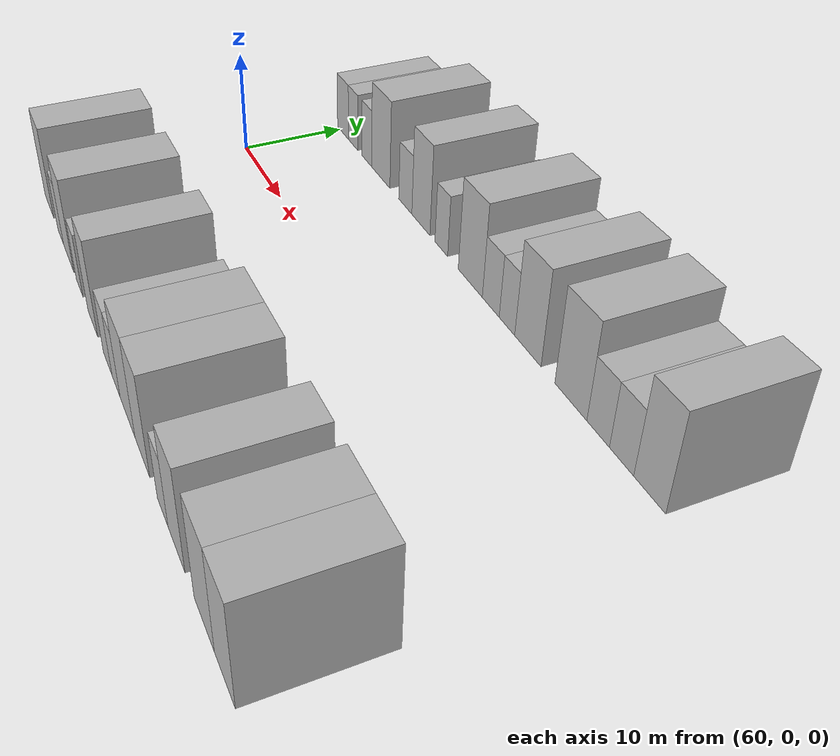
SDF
<sdf version="1.6">
 <world name="default">
  <model name="building_13">
   <static>1</static>
   <pose>60.8177 15.0000 0 0.000000 0.000000 1.570796</pose>
   <link name="link">
    <pose>0 0 3.00 0 0 0</pose>
    <collision name="collision"><geometry><box><size>10.0000 2.9090 6.0000</size></box></geometry></collision>
    <visual name="visual">
     <cast_shadows>0</cast_shadows>
     <geometry><box><size>10.0000 2.9090 6.0000</size></box></geometry>
     <material>
      <script>
       <uri>model://HANNAS_wall/materials/scripts</uri>
       <uri>model://HANNAS_wall/materials/textures</uri>
       <name>vrc/HANNAS_wall</name>
      </script>
     </material>
    </visual>
   </link>
  </model>
  <model name="building_14">
   <static>1</static>
   <pose>63.4770 15.0000 0 0.000000 0.000000 1.570796</pose>
   <link name="link">
    <pose>0 0 3.00 0 0 0</pose>
    <collision name="collision"><geometry><box><size>10.0000 2.4096 6.0000</size></box></geometry></collision>
    <visual name="visual">
     <cast_shadows>0</cast_shadows>
     <geometry><box><size>10.0000 2.4096 6.0000</size></box></geometry>
     <material>
      <script>
       <uri>model://HANNAS_wall/materials/scripts</uri>
       <uri>model://HANNAS_wall/materials/textures</uri>
       <name>vrc/HANNAS_wall</name>
      </script>
     </material>
    </visual>
   </link>
  </model>
  <model name="building_15">
   <static>1</static>
   <pose>66.9053 15.0000 0 0.000000 0.000000 1.570796</pose>
   <link name="link">
    <pose>0 0 3.00 0 0 0</pose>
    <collision name="collision"><geometry><box><size>10.0000 2.4470 6.0000</size></box></geometry></collision>
    <visual name="visual">
     <cast_shadows>0</cast_shadows>
     <geometry><box><size>10.0000 2.4470 6.0000</size></box></geometry>
     <material>
      <script>
       <uri>model://HANNAS_wall/materials/scripts</uri>
       <uri>model://HANNAS_wall/materials/textures</uri>
       <name>vrc/HANNAS_wall</name>
      </script>
     </material>
    </visual>
   </link>
  </model>
  <model name="building_16">
   <static>1</static>
   <pose>70.2902 15.0000 0 0.000000 0.000000 1.570796</pose>
   <link name="link">
    <pose>0 0 4.50 0 0 0</pose>
    <collision name="collision"><geometry><box><size>10.0000 4.3228 9.0000</size></box></geometry></collision>
    <visual name="visual">
     <cast_shadows>0</cast_shadows>
     <geometry><box><size>10.0000 4.3228 9.0000</size></box></geometry>
     <material>
      <script>
       <uri>model://HANNAS_wall/materials/scripts</uri>
       <uri>model://HANNAS_wall/materials/textures</uri>
       <name>vrc/HANNAS_wall</name>
      </script>
     </material>
    </visual>
   </link>
  </model>
  <model name="building_17">
   <static>1</static>
   <pose>75.8866 15.0000 0 0.000000 0.000000 1.570796</pose>
   <link name="link">
    <pose>0 0 3.00 0 0 0</pose>
    <collision name="collision"><geometry><box><size>10.0000 2.8701 6.0000</size></box></geometry></collision>
    <visual name="visual">
     <cast_shadows>0</cast_shadows>
     <geometry><box><size>10.0000 2.8701 6.0000</size></box></geometry>
     <material>
      <script>
       <uri>model://HANNAS_wall/materials/scripts</uri>
       <uri>model://HANNAS_wall/materials/textures</uri>
       <name>vrc/HANNAS_wall</name>
      </script>
     </material>
    </visual>
   </link>
  </model>
  <model name="building_18">
   <static>1</static>
   <pose>79.2001 15.0000 0 0.000000 0.000000 1.570796</pose>
   <link name="link">
    <pose>0 0 4.50 0 0 0</pose>
    <collision name="collision"><geometry><box><size>10.0000 3.7569 9.0000</size></box></geometry></collision>
    <visual name="visual">
     <cast_shadows>0</cast_shadows>
     <geometry><box><size>10.0000 3.7569 9.0000</size></box></geometry>
     <material>
      <script>
       <uri>model://HANNAS_wall/materials/scripts</uri>
       <uri>model://HANNAS_wall/materials/textures</uri>
       <name>vrc/HANNAS_wall</name>
      </script>
     </material>
    </visual>
   </link>
  </model>
  <model name="building_19">
   <static>1</static>
   <pose>83.3253 15.0000 0 0.000000 0.000000 1.570796</pose>
   <link name="link">
    <pose>0 0 3.00 0 0 0</pose>
    <collision name="collision"><geometry><box><size>10.0000 2.4935 6.0000</size></box></geometry></collision>
    <visual name="visual">
     <cast_shadows>0</cast_shadows>
     <geometry><box><size>10.0000 2.4935 6.0000</size></box></geometry>
     <material>
      <script>
       <uri>model://HANNAS_wall/materials/scripts</uri>
       <uri>model://HANNAS_wall/materials/textures</uri>
       <name>vrc/HANNAS_wall</name>
      </script>
     </material>
    </visual>
   </link>
  </model>
  <model name="building_20">
   <static>1</static>
   <pose>88.7367 15.0000 0 0.000000 0.000000 1.570796</pose>
   <link name="link">
    <pose>0 0 4.50 0 0 0</pose>
    <collision name="collision"><geometry><box><size>10.0000 4.3294 9.0000</size></box></geometry></collision>
    <visual name="visual">
     <cast_shadows>0</cast_shadows>
     <geometry><box><size>10.0000 4.3294 9.0000</size></box></geometry>
     <material>
      <script>
       <uri>model://HANNAS_wall/materials/scripts</uri>
       <uri>model://HANNAS_wall/materials/textures</uri>
       <name>vrc/HANNAS_wall</name>
      </script>
     </material>
    </visual>
   </link>
  </model>
  <model name="building_21">
   <static>1</static>
   <pose>92.3291 15.0000 0 0.000000 0.000000 1.570796</pose>
   <link name="link">
    <pose>0 0 3.00 0 0 0</pose>
    <collision name="collision"><geometry><box><size>10.0000 2.8554 6.0000</size></box></geometry></collision>
    <visual name="visual">
     <cast_shadows>0</cast_shadows>
     <geometry><box><size>10.0000 2.8554 6.0000</size></box></geometry>
     <material>
      <script>
       <uri>model://HANNAS_wall/materials/scripts</uri>
       <uri>model://HANNAS_wall/materials/textures</uri>
       <name>vrc/HANNAS_wall</name>
      </script>
     </material>
    </visual>
   </link>
  </model>
  <model name="building_22">
   <static>1</static>
   <pose>95.0133 15.0000 0 0.000000 0.000000 1.570796</pose>
   <link name="link">
    <pose>0 0 3.00 0 0 0</pose>
    <collision name="collision"><geometry><box><size>10.0000 2.5129 6.0000</size></box></geometry></collision>
    <visual name="visual">
     <cast_shadows>0</cast_shadows>
     <geometry><box><size>10.0000 2.5129 6.0000</size></box></geometry>
     <material>
      <script>
       <uri>model://HANNAS_wall/materials/scripts</uri>
       <uri>model://HANNAS_wall/materials/textures</uri>
       <name>vrc/HANNAS_wall</name>
      </script>
     </material>
    </visual>
   </link>
  </model>
  <model name="building_23">
   <static>1</static>
   <pose>98.2925 15.0000 0 0.000000 0.000000 1.570796</pose>
   <link name="link">
    <pose>0 0 4.50 0 0 0</pose>
    <collision name="collision"><geometry><box><size>10.0000 4.0456 9.0000</size></box></geometry></collision>
    <visual name="visual">
     <cast_shadows>0</cast_shadows>
     <geometry><box><size>10.0000 4.0456 9.0000</size></box></geometry>
     <material>
      <script>
       <uri>model://HANNAS_wall/materials/scripts</uri>
       <uri>model://HANNAS_wall/materials/textures</uri>
       <name>vrc/HANNAS_wall</name>
      </script>
     </material>
    </visual>
   </link>
  </model>
  <model name="building_24">
   <static>1</static>
   <pose>104.5154 15.0000 0 0.000000 0.000000 1.570796</pose>
   <link name="link">
    <pose>0 0 4.50 0 0 0</pose>
    <collision name="collision"><geometry><box><size>10.0000 4.4003 9.0000</size></box></geometry></collision>
    <visual name="visual">
     <cast_shadows>0</cast_shadows>
     <geometry><box><size>10.0000 4.4003 9.0000</size></box></geometry>
     <material>
      <script>
       <uri>model://HANNAS_wall/materials/scripts</uri>
       <uri>model://HANNAS_wall/materials/textures</uri>
       <name>vrc/HANNAS_wall</name>
      </script>
     </material>
    </visual>
   </link>
  </model>
  <model name="building_25">
   <static>1</static>
   <pose>108.1630 15.0000 0 0.000000 0.000000 1.570796</pose>
   <link name="link">
    <pose>0 0 3.00 0 0 0</pose>
    <collision name="collision"><geometry><box><size>10.0000 2.8949 6.0000</size></box></geometry></collision>
    <visual name="visual">
     <cast_shadows>0</cast_shadows>
     <geometry><box><size>10.0000 2.8949 6.0000</size></box></geometry>
     <material>
      <script>
       <uri>model://HANNAS_wall/materials/scripts</uri>
       <uri>model://HANNAS_wall/materials/textures</uri>
       <name>vrc/HANNAS_wall</name>
      </script>
     </material>
    </visual>
   </link>
  </model>
  <model name="building_26">
   <static>1</static>
   <pose>111.0786 15.0000 0 0.000000 0.000000 1.570796</pose>
   <link name="link">
    <pose>0 0 3.00 0 0 0</pose>
    <collision name="collision"><geometry><box><size>10.0000 2.9363 6.0000</size></box></geometry></collision>
    <visual name="visual">
     <cast_shadows>0</cast_shadows>
     <geometry><box><size>10.0000 2.9363 6.0000</size></box></geometry>
     <material>
      <script>
       <uri>model://HANNAS_wall/materials/scripts</uri>
       <uri>model://HANNAS_wall/materials/textures</uri>
       <name>vrc/HANNAS_wall</name>
      </script>
     </material>
    </visual>
   </link>
  </model>
  <model name="building_27">
   <static>1</static>
   <pose>114.3755 15.0000 0 0.000000 0.000000 1.570796</pose>
   <link name="link">
    <pose>0 0 4.50 0 0 0</pose>
    <collision name="collision"><geometry><box><size>10.0000 3.6575 9.0000</size></box></geometry></collision>
    <visual name="visual">
     <cast_shadows>0</cast_shadows>
     <geometry><box><size>10.0000 3.6575 9.0000</size></box></geometry>
     <material>
      <script>
       <uri>model://HANNAS_wall/materials/scripts</uri>
       <uri>model://HANNAS_wall/materials/textures</uri>
       <name>vrc/HANNAS_wall</name>
      </script>
     </material>
    </visual>
   </link>
  </model>
  <model name="building_69">
   <static>1</static>
   <pose>63.2808 -15.0000 0 0.000000 0.000000 1.570796</pose>
   <link name="link">
    <pose>0 0 4.50 0 0 0</pose>
    <collision name="collision"><geometry><box><size>10.0000 4.2075 9.0000</size></box></geometry></collision>
    <visual name="visual">
     <cast_shadows>0</cast_shadows>
     <geometry><box><size>10.0000 4.2075 9.0000</size></box></geometry>
     <material>
      <script>
       <uri>model://HANNAS_wall/materials/scripts</uri>
       <uri>model://HANNAS_wall/materials/textures</uri>
       <name>vrc/HANNAS_wall</name>
      </script>
     </material>
    </visual>
   </link>
  </model>
  <model name="building_70">
   <static>1</static>
   <pose>68.7220 -15.0000 0 0.000000 0.000000 1.570796</pose>
   <link name="link">
    <pose>0 0 3.00 0 0 0</pose>
    <collision name="collision"><geometry><box><size>10.0000 2.6748 6.0000</size></box></geometry></collision>
    <visual name="visual">
     <cast_shadows>0</cast_shadows>
     <geometry><box><size>10.0000 2.6748 6.0000</size></box></geometry>
     <material>
      <script>
       <uri>model://HANNAS_wall/materials/scripts</uri>
       <uri>model://HANNAS_wall/materials/textures</uri>
       <name>vrc/HANNAS_wall</name>
      </script>
     </material>
    </visual>
   </link>
  </model>
  <model name="building_71">
   <static>1</static>
   <pose>72.3018 -15.0000 0 0.000000 0.000000 1.570796</pose>
   <link name="link">
    <pose>0 0 4.50 0 0 0</pose>
    <collision name="collision"><geometry><box><size>10.0000 4.4849 9.0000</size></box></geometry></collision>
    <visual name="visual">
     <cast_shadows>0</cast_shadows>
     <geometry><box><size>10.0000 4.4849 9.0000</size></box></geometry>
     <material>
      <script>
       <uri>model://HANNAS_wall/materials/scripts</uri>
       <uri>model://HANNAS_wall/materials/textures</uri>
       <name>vrc/HANNAS_wall</name>
      </script>
     </material>
    </visual>
   </link>
  </model>
  <model name="building_72">
   <static>1</static>
   <pose>76.8808 -15.0000 0 0.000000 0.000000 1.570796</pose>
   <link name="link">
    <pose>0 0 3.00 0 0 0</pose>
    <collision name="collision"><geometry><box><size>10.0000 2.6730 6.0000</size></box></geometry></collision>
    <visual name="visual">
     <cast_shadows>0</cast_shadows>
     <geometry><box><size>10.0000 2.6730 6.0000</size></box></geometry>
     <material>
      <script>
       <uri>model://HANNAS_wall/materials/scripts</uri>
       <uri>model://HANNAS_wall/materials/textures</uri>
       <name>vrc/HANNAS_wall</name>
      </script>
     </material>
    </visual>
   </link>
  </model>
  <model name="building_73">
   <static>1</static>
   <pose>82.0401 -15.0000 0 0.000000 0.000000 1.570796</pose>
   <link name="link">
    <pose>0 0 4.50 0 0 0</pose>
    <collision name="collision"><geometry><box><size>10.0000 3.6457 9.0000</size></box></geometry></collision>
    <visual name="visual">
     <cast_shadows>0</cast_shadows>
     <geometry><box><size>10.0000 3.6457 9.0000</size></box></geometry>
     <material>
      <script>
       <uri>model://HANNAS_wall/materials/scripts</uri>
       <uri>model://HANNAS_wall/materials/textures</uri>
       <name>vrc/HANNAS_wall</name>
      </script>
     </material>
    </visual>
   </link>
  </model>
  <model name="building_74">
   <static>1</static>
   <pose>87.3575 -15.0000 0 0.000000 0.000000 1.570796</pose>
   <link name="link">
    <pose>0 0 3.00 0 0 0</pose>
    <collision name="collision"><geometry><box><size>10.0000 2.9891 6.0000</size></box></geometry></collision>
    <visual name="visual">
     <cast_shadows>0</cast_shadows>
     <geometry><box><size>10.0000 2.9891 6.0000</size></box></geometry>
     <material>
      <script>
       <uri>model://HANNAS_wall/materials/scripts</uri>
       <uri>model://HANNAS_wall/materials/textures</uri>
       <name>vrc/HANNAS_wall</name>
      </script>
     </material>
    </visual>
   </link>
  </model>
  <model name="building_75">
   <static>1</static>
   <pose>90.1687 -15.0000 0 0.000000 0.000000 1.570796</pose>
   <link name="link">
    <pose>0 0 3.00 0 0 0</pose>
    <collision name="collision"><geometry><box><size>10.0000 2.6333 6.0000</size></box></geometry></collision>
    <visual name="visual">
     <cast_shadows>0</cast_shadows>
     <geometry><box><size>10.0000 2.6333 6.0000</size></box></geometry>
     <material>
      <script>
       <uri>model://HANNAS_wall/materials/scripts</uri>
       <uri>model://HANNAS_wall/materials/textures</uri>
       <name>vrc/HANNAS_wall</name>
      </script>
     </material>
    </visual>
   </link>
  </model>
  <model name="building_76">
   <static>1</static>
   <pose>93.7353 -15.0000 0 0.000000 0.000000 1.570796</pose>
   <link name="link">
    <pose>0 0 4.50 0 0 0</pose>
    <collision name="collision"><geometry><box><size>10.0000 4.5000 9.0000</size></box></geometry></collision>
    <visual name="visual">
     <cast_shadows>0</cast_shadows>
     <geometry><box><size>10.0000 4.5000 9.0000</size></box></geometry>
     <material>
      <script>
       <uri>model://HANNAS_wall/materials/scripts</uri>
       <uri>model://HANNAS_wall/materials/textures</uri>
       <name>vrc/HANNAS_wall</name>
      </script>
     </material>
    </visual>
   </link>
  </model>
  <model name="building_77">
   <static>1</static>
   <pose>98.0357 -15.0000 0 0.000000 0.000000 1.570796</pose>
   <link name="link">
    <pose>0 0 4.50 0 0 0</pose>
    <collision name="collision"><geometry><box><size>10.0000 4.1008 9.0000</size></box></geometry></collision>
    <visual name="visual">
     <cast_shadows>0</cast_shadows>
     <geometry><box><size>10.0000 4.1008 9.0000</size></box></geometry>
     <material>
      <script>
       <uri>model://HANNAS_wall/materials/scripts</uri>
       <uri>model://HANNAS_wall/materials/textures</uri>
       <name>vrc/HANNAS_wall</name>
      </script>
     </material>
    </visual>
   </link>
  </model>
  <model name="building_78">
   <static>1</static>
   <pose>103.4363 -15.0000 0 0.000000 0.000000 1.570796</pose>
   <link name="link">
    <pose>0 0 3.00 0 0 0</pose>
    <collision name="collision"><geometry><box><size>10.0000 2.7004 6.0000</size></box></geometry></collision>
    <visual name="visual">
     <cast_shadows>0</cast_shadows>
     <geometry><box><size>10.0000 2.7004 6.0000</size></box></geometry>
     <material>
      <script>
       <uri>model://HANNAS_wall/materials/scripts</uri>
       <uri>model://HANNAS_wall/materials/textures</uri>
       <name>vrc/HANNAS_wall</name>
      </script>
     </material>
    </visual>
   </link>
  </model>
  <model name="building_79">
   <static>1</static>
   <pose>106.7669 -15.0000 0 0.000000 0.000000 1.570796</pose>
   <link name="link">
    <pose>0 0 4.50 0 0 0</pose>
    <collision name="collision"><geometry><box><size>10.0000 3.9607 9.0000</size></box></geometry></collision>
    <visual name="visual">
     <cast_shadows>0</cast_shadows>
     <geometry><box><size>10.0000 3.9607 9.0000</size></box></geometry>
     <material>
      <script>
       <uri>model://HANNAS_wall/materials/scripts</uri>
       <uri>model://HANNAS_wall/materials/textures</uri>
       <name>vrc/HANNAS_wall</name>
      </script>
     </material>
    </visual>
   </link>
  </model>
  <model name="building_80">
   <static>1</static>
   <pose>112.8422 -15.0000 0 0.000000 0.000000 1.570796</pose>
   <link name="link">
    <pose>0 0 4.50 0 0 0</pose>
    <collision name="collision"><geometry><box><size>10.0000 4.1899 9.0000</size></box></geometry></collision>
    <visual name="visual">
     <cast_shadows>0</cast_shadows>
     <geometry><box><size>10.0000 4.1899 9.0000</size></box></geometry>
     <material>
      <script>
       <uri>model://HANNAS_wall/materials/scripts</uri>
       <uri>model://HANNAS_wall/materials/textures</uri>
       <name>vrc/HANNAS_wall</name>
      </script>
     </material>
    </visual>
   </link>
  </model>
  <model name="building_81">
   <static>1</static>
   <pose>116.8840 -15.0000 0 0.000000 0.000000 1.570796</pose>
   <link name="link">
    <pose>0 0 4.50 0 0 0</pose>
    <collision name="collision"><geometry><box><size>10.0000 3.8938 9.0000</size></box></geometry></collision>
    <visual name="visual">
     <cast_shadows>0</cast_shadows>
     <geometry><box><size>10.0000 3.8938 9.0000</size></box></geometry>
     <material>
      <script>
       <uri>model://HANNAS_wall/materials/scripts</uri>
       <uri>model://HANNAS_wall/materials/textures</uri>
       <name>vrc/HANNAS_wall</name>
      </script>
     </material>
    </visual>
   </link>
  </model>
 </world>
</sdf>
